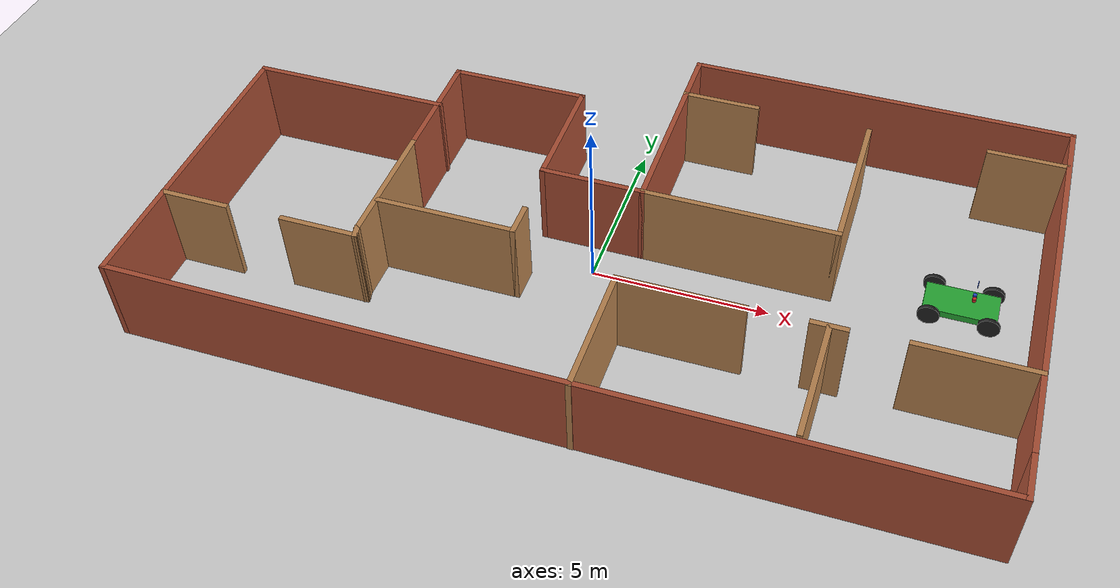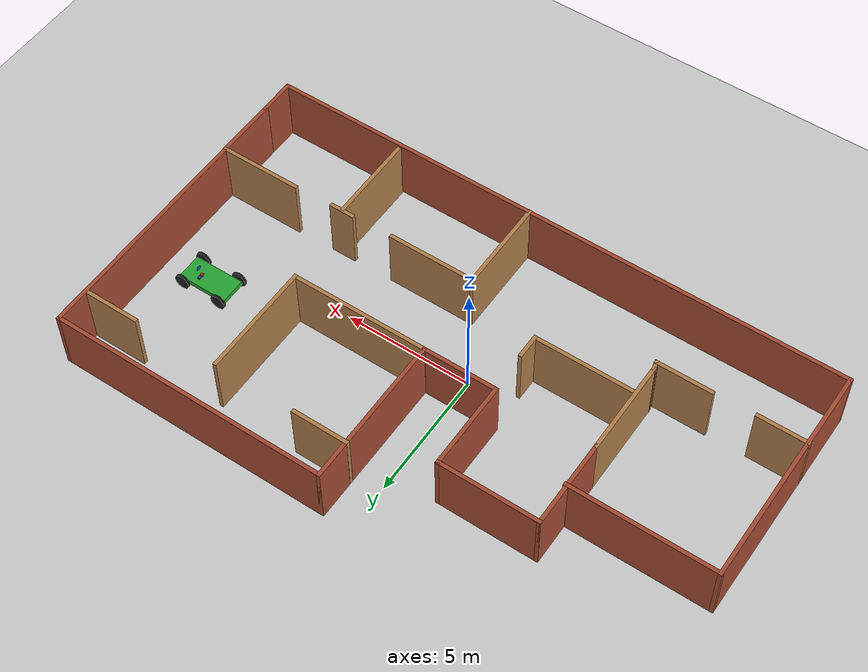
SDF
<sdf version="1.6">
 <world name="default">
  <light name="sun" type="directional">
   <pose>0 0 10 0 -0 0</pose>
   <diffuse>0.8 0.8 0.8 1</diffuse>
   <specular>0.1 0.1 0.1 1</specular>
   <attenuation>
    <range>1000</range>
    <constant>0.9</constant>
    <linear>0.01</linear>
    <quadratic>0.001</quadratic>
   </attenuation>
   <direction>-0.5 0.5 -1</direction>
  </light>
  <model name="ground_plane">
   <static>1</static>
   <link name="link">
    <collision name="collision">
     <geometry><plane><normal>0 0 1</normal><size>100 100</size></plane></geometry>
     <surface><friction><ode><mu>100</mu><mu2>50</mu2></ode></friction></surface>
    </collision>
    <visual name="visual">
     <cast_shadows>0</cast_shadows>
     <geometry><plane><normal>0 0 1</normal><size>100 100</size></plane></geometry>
     <material>
      <script><uri>file://media/materials/scripts/gazebo.material</uri><name>Gazebo/Grey</name></script>
     </material>
    </visual>
   </link>
  </model>
  <gravity>0 0 -9.8</gravity>
  <magnetic_field>6e-06 2.3e-05 -4.2e-05</magnetic_field>
  <atmosphere type="adiabatic"/>
  <physics name="default_physics" default="0" type="ode">
   <max_step_size>0.001</max_step_size>
   <real_time_factor>1</real_time_factor>
   <real_time_update_rate>1000</real_time_update_rate>
  </physics>
  <scene><ambient>0.4 0.4 0.4 1</ambient><background>0.7 0.7 0.7 1</background><shadows>1</shadows></scene>
  <spherical_coordinates>
   <surface_model>EARTH_WGS84</surface_model>
   <latitude_deg>0</latitude_deg>
   <longitude_deg>0</longitude_deg>
   <elevation>0</elevation>
   <heading_deg>0</heading_deg>
  </spherical_coordinates>
  <model name="repo16">
   <pose>0.37862 0.526023 0 0 -0 0</pose>
   <link name="Wall_0">
    <collision name="Wall_0_Collision">
     <geometry><box><size>3.75 0.15 2.5</size></box></geometry>
     <pose>0 0 1.25 0 -0 0</pose>
    </collision>
    <visual name="Wall_0_Visual">
     <pose>0 0 1.25 0 -0 0</pose>
     <geometry><box><size>3.75 0.15 2.5</size></box></geometry>
     <material>
      <script><uri>file://media/materials/scripts/gazebo.material</uri><name>Gazebo/Wood</name></script>
      <ambient>1 1 1 1</ambient>
     </material>
    </visual>
    <pose>-5.99702 -1.29131 0 0 -0 1.5708</pose>
   </link>
   <link name="Wall_1">
    <collision name="Wall_1_Collision">
     <geometry><box><size>3.5 0.15 2.5</size></box></geometry>
     <pose>0 0 1.25 0 -0 0</pose>
    </collision>
    <visual name="Wall_1_Visual">
     <pose>0 0 1.25 0 -0 0</pose>
     <geometry><box><size>3.5 0.15 2.5</size></box></geometry>
     <material>
      <script><uri>file://media/materials/scripts/gazebo.material</uri><name>Gazebo/Bricks</name></script>
      <ambient>1 1 1 1</ambient>
     </material>
    </visual>
    <pose>-5.99702 2.18369 0 0 -0 1.5708</pose>
   </link>
   <link name="Wall_10">
    <collision name="Wall_10_Collision">
     <geometry><box><size>8.75 0.15 2.5</size></box></geometry>
     <pose>0 0 1.25 0 -0 0</pose>
    </collision>
    <visual name="Wall_10_Visual">
     <pose>0 0 1.25 0 -0 0</pose>
     <geometry><box><size>8.75 0.15 2.5</size></box></geometry>
     <material>
      <script><uri>file://media/materials/scripts/gazebo.material</uri><name>Gazebo/Bricks</name></script>
      <ambient>1 1 1 1</ambient>
     </material>
    </visual>
    <pose>-11.547 -2.04131 0 0 -0 1.5708</pose>
   </link>
   <link name="Wall_11">
    <collision name="Wall_11_Collision">
     <geometry><box><size>5.75 0.15 2.5</size></box></geometry>
     <pose>0 0 1.25 0 -0 0</pose>
    </collision>
    <visual name="Wall_11_Visual">
     <pose>0 0 1.25 0 -0 0</pose>
     <geometry><box><size>5.75 0.15 2.5</size></box></geometry>
     <material>
      <script><uri>file://media/materials/scripts/gazebo.material</uri><name>Gazebo/Bricks</name></script>
      <ambient>1 1 1 1</ambient>
     </material>
    </visual>
    <pose>-8.74702 2.25869 0 0 -0 0</pose>
   </link>
   <link name="Wall_13">
    <collision name="Wall_13_Collision">
     <geometry><box><size>2 0.15 2.5</size></box></geometry>
     <pose>0 0 1.25 0 -0 0</pose>
    </collision>
    <visual name="Wall_13_Visual">
     <pose>0 0 1.25 0 -0 0</pose>
     <geometry><box><size>2 0.15 2.5</size></box></geometry>
     <material>
      <script><uri>file://media/materials/scripts/gazebo.material</uri><name>Gazebo/Wood</name></script>
      <ambient>1 1 1 1</ambient>
     </material>
    </visual>
    <pose>-10.628 -3.41098 0 0 -0 0</pose>
   </link>
   <link name="Wall_15">
    <collision name="Wall_15_Collision">
     <geometry><box><size>2.25 0.15 2.5</size></box></geometry>
     <pose>0 0 1.25 0 -0 0</pose>
    </collision>
    <visual name="Wall_15_Visual">
     <pose>0 0 1.25 0 -0 0</pose>
     <geometry><box><size>2.25 0.15 2.5</size></box></geometry>
     <material>
      <script><uri>file://media/materials/scripts/gazebo.material</uri><name>Gazebo/Wood</name></script>
      <ambient>1 1 1 1</ambient>
     </material>
    </visual>
    <pose>-6.98713 -3.36472 0 0 -0 0</pose>
   </link>
   <link name="Wall_16">
    <collision name="Wall_16_Collision">
     <geometry><box><size>0.429893 0.15 2.5</size></box></geometry>
     <pose>0 0 1.25 0 -0 0</pose>
    </collision>
    <visual name="Wall_16_Visual">
     <pose>0 0 1.25 0 -0 0</pose>
     <geometry><box><size>0.429893 0.15 2.5</size></box></geometry>
     <material>
      <script><uri>file://media/materials/scripts/gazebo.material</uri><name>Gazebo/Wood</name></script>
      <ambient>1 1 1 1</ambient>
     </material>
    </visual>
    <pose>-5.96707 -3.22801 0 0 -0 1.78643</pose>
   </link>
   <link name="Wall_18">
    <collision name="Wall_18_Collision">
     <geometry><box><size>4 0.15 2.5</size></box></geometry>
     <pose>0 0 1.25 0 -0 0</pose>
    </collision>
    <visual name="Wall_18_Visual">
     <pose>0 0 1.25 0 -0 0</pose>
     <geometry><box><size>4 0.15 2.5</size></box></geometry>
     <material>
      <script><uri>file://media/materials/scripts/gazebo.material</uri><name>Gazebo/Wood</name></script>
      <ambient>1 1 1 1</ambient>
     </material>
    </visual>
    <pose>-4.00656 -1.94846 0 0 -0 0</pose>
   </link>
   <link name="Wall_19">
    <collision name="Wall_19_Collision">
     <geometry><box><size>1 0.15 2.5</size></box></geometry>
     <pose>0 0 1.25 0 -0 0</pose>
    </collision>
    <visual name="Wall_19_Visual">
     <pose>0 0 1.25 0 -0 0</pose>
     <geometry><box><size>1 0.15 2.5</size></box></geometry>
     <material>
      <script><uri>file://media/materials/scripts/gazebo.material</uri><name>Gazebo/Wood</name></script>
      <ambient>1 1 1 1</ambient>
     </material>
    </visual>
    <pose>-2.08156 -1.52346 0 0 -0 1.5708</pose>
   </link>
   <link name="Wall_2">
    <collision name="Wall_2_Collision">
     <geometry><box><size>4 0.15 2.5</size></box></geometry>
     <pose>0 0 1.25 0 -0 0</pose>
    </collision>
    <visual name="Wall_2_Visual">
     <pose>0 0 1.25 0 -0 0</pose>
     <geometry><box><size>4 0.15 2.5</size></box></geometry>
     <material>
      <script><uri>file://media/materials/scripts/gazebo.material</uri><name>Gazebo/Bricks</name></script>
      <ambient>1 1 1 1</ambient>
     </material>
    </visual>
    <pose>-4.07202 3.85869 0 0 -0 0</pose>
   </link>
   <link name="Wall_21">
    <collision name="Wall_21_Collision">
     <geometry><box><size>3.75 0.15 2.5</size></box></geometry>
     <pose>0 0 1.25 0 -0 0</pose>
    </collision>
    <visual name="Wall_21_Visual">
     <pose>0 0 1.25 0 -0 0</pose>
     <geometry><box><size>3.75 0.15 2.5</size></box></geometry>
     <material>
      <script><uri>file://media/materials/scripts/gazebo.material</uri><name>Gazebo/Wood</name></script>
      <ambient>1 1 1 1</ambient>
     </material>
    </visual>
    <pose>0.976786 -4.55869 0 0 -0 1.5708</pose>
   </link>
   <link name="Wall_22">
    <collision name="Wall_22_Collision">
     <geometry><box><size>3.5 0.15 2.5</size></box></geometry>
     <pose>0 0 1.25 0 -0 0</pose>
    </collision>
    <visual name="Wall_22_Visual">
     <pose>0 0 1.25 0 -0 0</pose>
     <geometry><box><size>3.5 0.15 2.5</size></box></geometry>
     <material>
      <script><uri>file://media/materials/scripts/gazebo.material</uri><name>Gazebo/Wood</name></script>
      <ambient>1 1 1 1</ambient>
     </material>
    </visual>
    <pose>2.65179 -2.75869 0 0 -0 0</pose>
   </link>
   <link name="Wall_24">
    <collision name="Wall_24_Collision">
     <geometry><box><size>1 0.15 2.5</size></box></geometry>
     <pose>0 0 1.25 0 -0 0</pose>
    </collision>
    <visual name="Wall_24_Visual">
     <pose>0 0 1.25 0 -0 0</pose>
     <geometry><box><size>1 0.15 2.5</size></box></geometry>
     <material>
      <script><uri>file://media/materials/scripts/gazebo.material</uri><name>Gazebo/Wood</name></script>
      <ambient>1 1 1 1</ambient>
     </material>
    </visual>
    <pose>6.42884 -2.71948 0 0 -0 0</pose>
   </link>
   <link name="Wall_26">
    <collision name="Wall_26_Collision">
     <geometry><box><size>3.5 0.15 2.5</size></box></geometry>
     <pose>0 0 1.25 0 -0 0</pose>
    </collision>
    <visual name="Wall_26_Visual">
     <pose>0 0 1.25 0 -0 0</pose>
     <geometry><box><size>3.5 0.15 2.5</size></box></geometry>
     <material>
      <script><uri>file://media/materials/scripts/gazebo.material</uri><name>Gazebo/Wood</name></script>
      <ambient>1 1 1 1</ambient>
     </material>
    </visual>
    <pose>6.43561 -4.45616 0 0 0 -1.5708</pose>
   </link>
   <link name="Wall_28">
    <collision name="Wall_28_Collision">
     <geometry><box><size>3.25 0.15 2.5</size></box></geometry>
     <pose>0 0 1.25 0 -0 0</pose>
    </collision>
    <visual name="Wall_28_Visual">
     <pose>0 0 1.25 0 -0 0</pose>
     <geometry><box><size>3.25 0.15 2.5</size></box></geometry>
     <material>
      <script><uri>file://media/materials/scripts/gazebo.material</uri><name>Gazebo/Wood</name></script>
      <ambient>1 1 1 1</ambient>
     </material>
    </visual>
    <pose>9.99026 -2.6578 0 0 -0 0</pose>
   </link>
   <link name="Wall_3">
    <collision name="Wall_3_Collision">
     <geometry><box><size>3.5 0.15 2.5</size></box></geometry>
     <pose>0 0 1.25 0 -0 0</pose>
    </collision>
    <visual name="Wall_3_Visual">
     <pose>0 0 1.25 0 -0 0</pose>
     <geometry><box><size>3.5 0.15 2.5</size></box></geometry>
     <material>
      <script><uri>file://media/materials/scripts/gazebo.material</uri><name>Gazebo/Bricks</name></script>
      <ambient>1 1 1 1</ambient>
     </material>
    </visual>
    <pose>-2.14702 2.18369 0 0 0 -1.5708</pose>
   </link>
   <link name="Wall_30">
    <collision name="Wall_30_Collision">
     <geometry><box><size>2.25 0.15 2.5</size></box></geometry>
     <pose>0 0 1.25 0 -0 0</pose>
    </collision>
    <visual name="Wall_30_Visual">
     <pose>0 0 1.25 0 -0 0</pose>
     <geometry><box><size>2.25 0.15 2.5</size></box></geometry>
     <material>
      <script><uri>file://media/materials/scripts/gazebo.material</uri><name>Gazebo/Wood</name></script>
      <ambient>1 1 1 1</ambient>
     </material>
    </visual>
    <pose>1.74922 4.8982 0 0 -0 0</pose>
   </link>
   <link name="Wall_32">
    <collision name="Wall_32_Collision">
     <geometry><box><size>2.25 0.15 2.5</size></box></geometry>
     <pose>0 0 1.25 0 -0 0</pose>
    </collision>
    <visual name="Wall_32_Visual">
     <pose>0 0 1.25 0 -0 0</pose>
     <geometry><box><size>2.25 0.15 2.5</size></box></geometry>
     <material>
      <script><uri>file://media/materials/scripts/gazebo.material</uri><name>Gazebo/Wood</name></script>
      <ambient>1 1 1 1</ambient>
     </material>
    </visual>
    <pose>10.4435 4.99073 0 0 -0 3.14159</pose>
   </link>
   <link name="Wall_35">
    <collision name="Wall_35_Collision">
     <geometry><box><size>5.5 0.15 2.5</size></box></geometry>
     <pose>0 0 1.25 0 -0 0</pose>
    </collision>
    <visual name="Wall_35_Visual">
     <pose>0 0 1.25 0 -0 0</pose>
     <geometry><box><size>5.5 0.15 2.5</size></box></geometry>
     <material>
      <script><uri>file://media/materials/scripts/gazebo.material</uri><name>Gazebo/Wood</name></script>
      <ambient>1 1 1 1</ambient>
     </material>
    </visual>
    <pose>3.37798 0.508692 0 0 -0 0</pose>
   </link>
   <link name="Wall_36">
    <collision name="Wall_36_Collision">
     <geometry><box><size>4.5 0.15 2.5</size></box></geometry>
     <pose>0 0 1.25 0 -0 0</pose>
    </collision>
    <visual name="Wall_36_Visual">
     <pose>0 0 1.25 0 -0 0</pose>
     <geometry><box><size>4.5 0.15 2.5</size></box></geometry>
     <material>
      <script><uri>file://media/materials/scripts/gazebo.material</uri><name>Gazebo/Wood</name></script>
      <ambient>1 1 1 1</ambient>
     </material>
    </visual>
    <pose>6.05298 2.68369 0 0 -0 1.5708</pose>
   </link>
   <link name="Wall_4">
    <collision name="Wall_4_Collision">
     <geometry><box><size>3 0.15 2.5</size></box></geometry>
     <pose>0 0 1.25 0 -0 0</pose>
    </collision>
    <visual name="Wall_4_Visual">
     <pose>0 0 1.25 0 -0 0</pose>
     <geometry><box><size>3 0.15 2.5</size></box></geometry>
     <material>
      <script><uri>file://media/materials/scripts/gazebo.material</uri><name>Gazebo/Bricks</name></script>
      <ambient>1 1 1 1</ambient>
     </material>
    </visual>
    <pose>-0.722018 0.508692 0 0 -0 0</pose>
   </link>
   <link name="Wall_5">
    <collision name="Wall_5_Collision">
     <geometry><box><size>6 0.15 2.5</size></box></geometry>
     <pose>0 0 1.25 0 -0 0</pose>
    </collision>
    <visual name="Wall_5_Visual">
     <pose>0 0 1.25 0 -0 0</pose>
     <geometry><box><size>6 0.15 2.5</size></box></geometry>
     <material>
      <script><uri>file://media/materials/scripts/gazebo.material</uri><name>Gazebo/Bricks</name></script>
      <ambient>1 1 1 1</ambient>
     </material>
    </visual>
    <pose>0.702982 3.43369 0 0 -0 1.5708</pose>
   </link>
   <link name="Wall_6">
    <collision name="Wall_6_Collision">
     <geometry><box><size>11 0.15 2.5</size></box></geometry>
     <pose>0 0 1.25 0 -0 0</pose>
    </collision>
    <visual name="Wall_6_Visual">
     <pose>0 0 1.25 0 -0 0</pose>
     <geometry><box><size>11 0.15 2.5</size></box></geometry>
     <material>
      <script><uri>file://media/materials/scripts/gazebo.material</uri><name>Gazebo/Bricks</name></script>
      <ambient>1 1 1 1</ambient>
     </material>
    </visual>
    <pose>6.12798 6.35869 0 0 -0 0</pose>
   </link>
   <link name="Wall_7">
    <collision name="Wall_7_Collision">
     <geometry><box><size>11.5 0.15 2.5</size></box></geometry>
     <pose>0 0 1.25 0 -0 0</pose>
    </collision>
    <visual name="Wall_7_Visual">
     <pose>0 0 1.25 0 -0 0</pose>
     <geometry><box><size>11.5 0.15 2.5</size></box></geometry>
     <material>
      <script><uri>file://media/materials/scripts/gazebo.material</uri><name>Gazebo/Bricks</name></script>
      <ambient>1 1 1 1</ambient>
     </material>
    </visual>
    <pose>11.553 0.683692 0 0 0 -1.5708</pose>
   </link>
   <link name="Wall_8">
    <collision name="Wall_8_Collision">
     <geometry><box><size>1.5 0.15 2.5</size></box></geometry>
     <pose>0 0 1.25 0 -0 0</pose>
    </collision>
    <visual name="Wall_8_Visual">
     <pose>0 0 1.25 0 -0 0</pose>
     <geometry><box><size>1.5 0.15 2.5</size></box></geometry>
     <material>
      <script><uri>file://media/materials/scripts/gazebo.material</uri><name>Gazebo/Bricks</name></script>
      <ambient>1 1 1 1</ambient>
     </material>
    </visual>
    <pose>11.553 -5.66631 0 0 0 -1.5708</pose>
   </link>
   <link name="Wall_9">
    <collision name="Wall_9_Collision">
     <geometry><box><size>23.25 0.15 2.5</size></box></geometry>
     <pose>0 0 1.25 0 -0 0</pose>
    </collision>
    <visual name="Wall_9_Visual">
     <pose>0 0 1.25 0 -0 0</pose>
     <geometry><box><size>23.25 0.15 2.5</size></box></geometry>
     <material>
      <script><uri>file://media/materials/scripts/gazebo.material</uri><name>Gazebo/Bricks</name></script>
      <ambient>1 1 1 1</ambient>
     </material>
    </visual>
    <pose>0.002982 -6.34131 0 0 -0 3.14159</pose>
   </link>
   <static>1</static>
  </model>
  <model name="car">
   <link name="chassis">
    <pose>0 0 0.3 0 -0 0</pose>
    <collision name="collision"><geometry><box><size>2 1 0.2</size></box></geometry></collision>
    <visual name="visual">
     <geometry><box><size>2 1 0.2</size></box></geometry>
     <material>
      <script><uri>file://media/materials/scripts/gazebo.material</uri><name>Gazebo/Green</name></script>
     </material>
    </visual>
    <inertial>
     <inertia><ixx>1</ixx><ixy>0</ixy><ixz>0</ixz><iyy>1</iyy><iyz>0</iyz><izz>1</izz></inertia>
     <mass>1</mass>
    </inertial>
   </link>
   <link name="front_left_wheel">
    <pose>0.8 0.6 0.3 -0 1.5707 1.5707</pose>
    <collision name="collision">
     <geometry><cylinder><radius>0.3</radius><length>0.1</length></cylinder></geometry>
    </collision>
    <visual name="visual">
     <geometry><cylinder><radius>0.3</radius><length>0.1</length></cylinder></geometry>
     <material>
      <script><uri>file://media/materials/scripts/gazebo.material</uri><name>Gazebo/Black</name></script>
     </material>
    </visual>
    <inertial>
     <inertia><ixx>1</ixx><ixy>0</ixy><ixz>0</ixz><iyy>1</iyy><iyz>0</iyz><izz>1</izz></inertia>
     <mass>1</mass>
    </inertial>
   </link>
   <link name="front_right_wheel">
    <pose>0.8 -0.6 0.3 -0 1.5707 1.5707</pose>
    <collision name="collision">
     <geometry><cylinder><radius>0.3</radius><length>0.1</length></cylinder></geometry>
    </collision>
    <visual name="visual">
     <geometry><cylinder><radius>0.3</radius><length>0.1</length></cylinder></geometry>
     <material>
      <script><uri>file://media/materials/scripts/gazebo.material</uri><name>Gazebo/Black</name></script>
     </material>
    </visual>
    <inertial>
     <inertia><ixx>1</ixx><ixy>0</ixy><ixz>0</ixz><iyy>1</iyy><iyz>0</iyz><izz>1</izz></inertia>
     <mass>1</mass>
    </inertial>
   </link>
   <link name="back_right_wheel">
    <pose>-0.8 -0.6 0.3 -0 1.5707 1.5707</pose>
    <collision name="collision">
     <geometry><cylinder><radius>0.3</radius><length>0.1</length></cylinder></geometry>
    </collision>
    <visual name="visual">
     <geometry><cylinder><radius>0.3</radius><length>0.1</length></cylinder></geometry>
     <material>
      <script><uri>file://media/materials/scripts/gazebo.material</uri><name>Gazebo/Black</name></script>
     </material>
    </visual>
    <inertial>
     <inertia><ixx>1</ixx><ixy>0</ixy><ixz>0</ixz><iyy>1</iyy><iyz>0</iyz><izz>1</izz></inertia>
     <mass>1</mass>
    </inertial>
   </link>
   <link name="back_left_wheel">
    <pose>-0.8 0.6 0.3 -0 1.5707 1.5707</pose>
    <collision name="collision">
     <geometry><cylinder><radius>0.3</radius><length>0.1</length></cylinder></geometry>
    </collision>
    <visual name="visual">
     <geometry><cylinder><radius>0.3</radius><length>0.1</length></cylinder></geometry>
     <material>
      <script><uri>file://media/materials/scripts/gazebo.material</uri><name>Gazebo/Black</name></script>
     </material>
    </visual>
    <inertial>
     <inertia><ixx>1</ixx><ixy>0</ixy><ixz>0</ixz><iyy>1</iyy><iyz>0</iyz><izz>1</izz></inertia>
     <mass>1</mass>
    </inertial>
   </link>
   <link name="gas_pedal">
    <pose>0.3 0.1 0.5 0 -0 0</pose>
    <collision name="collision"><geometry><box><size>0.1 0.1 0.1</size></box></geometry></collision>
    <visual name="visual">
     <geometry><box><size>0.1 0.1 0.1</size></box></geometry>
     <material>
      <script><uri>file://media/materials/scripts/gazebo.material</uri><name>Gazebo/Red</name></script>
     </material>
    </visual>
    <inertial>
     <inertia><ixx>1</ixx><ixy>0</ixy><ixz>0</ixz><iyy>1</iyy><iyz>0</iyz><izz>1</izz></inertia>
     <mass>1</mass>
    </inertial>
   </link>
   <link name="brake_pedal">
    <pose>0.3 0.25 0.5 0 -0 0</pose>
    <collision name="collision"><geometry><box><size>0.1 0.1 0.1</size></box></geometry></collision>
    <visual name="visual">
     <geometry><box><size>0.1 0.1 0.1</size></box></geometry>
     <material>
      <script><uri>file://media/materials/scripts/gazebo.material</uri><name>Gazebo/Blue</name></script>
     </material>
    </visual>
    <inertial>
     <inertia><ixx>1</ixx><ixy>0</ixy><ixz>0</ixz><iyy>1</iyy><iyz>0</iyz><izz>1</izz></inertia>
     <mass>1</mass>
    </inertial>
   </link>
   <link name="steering_wheel">
    <pose>0.3 0.2 1 0 1.5707 0</pose>
    <collision name="collision">
     <geometry><cylinder><radius>0.1</radius><length>0.01</length></cylinder></geometry>
    </collision>
    <visual name="visual">
     <geometry><cylinder><radius>0.1</radius><length>0.01</length></cylinder></geometry>
     <material>
      <script><uri>file://media/materials/scripts/gazebo.material</uri><name>Gazebo/Blue</name></script>
     </material>
    </visual>
    <inertial>
     <inertia><ixx>1</ixx><ixy>0</ixy><ixz>0</ixz><iyy>1</iyy><iyz>0</iyz><izz>1</izz></inertia>
     <mass>1</mass>
    </inertial>
   </link>
   <joint name="gas_joint" type="prismatic">
    <parent>chassis</parent>
    <child>gas_pedal</child>
    <axis>
     <xyz>1 0 0</xyz>
     <limit><lower>0</lower><upper>0.2</upper></limit>
     <use_parent_model_frame>1</use_parent_model_frame>
     <dynamics><spring_reference>0</spring_reference><spring_stiffness>0</spring_stiffness></dynamics>
    </axis>
   </joint>
   <joint name="brake_joint" type="prismatic">
    <parent>chassis</parent>
    <child>brake_pedal</child>
    <axis>
     <xyz>1 0 0</xyz>
     <limit><lower>0</lower><upper>0.2</upper></limit>
     <use_parent_model_frame>1</use_parent_model_frame>
     <dynamics><spring_reference>0</spring_reference><spring_stiffness>0</spring_stiffness></dynamics>
    </axis>
   </joint>
   <joint name="steering_joint" type="revolute">
    <parent>chassis</parent>
    <child>steering_wheel</child>
    <axis>
     <xyz>1 0 0</xyz>
     <limit><lower>-7.853</lower><upper>7.853</upper></limit>
     <use_parent_model_frame>1</use_parent_model_frame>
     <dynamics><spring_reference>0</spring_reference><spring_stiffness>0</spring_stiffness></dynamics>
    </axis>
   </joint>
   <joint name="front_left_joint" type="revolute2">
    <parent>chassis</parent>
    <child>front_left_wheel</child>
    <axis>
     <xyz>0 0 1</xyz>
     <limit><lower>8.69483e-06</lower><upper>8.69483e-06</upper></limit>
     <use_parent_model_frame>1</use_parent_model_frame>
     <dynamics><spring_reference>0</spring_reference><spring_stiffness>0</spring_stiffness></dynamics>
    </axis>
    <axis2>
     <xyz>0 1 0</xyz>
     <use_parent_model_frame>1</use_parent_model_frame>
     <dynamics><spring_reference>0</spring_reference><spring_stiffness>0</spring_stiffness></dynamics>
    </axis2>
    <physics><ode><limit><cfm>0</cfm><erp>0.9</erp></limit></ode></physics>
   </joint>
   <joint name="front_right_joint" type="revolute2">
    <parent>chassis</parent>
    <child>front_right_wheel</child>
    <axis>
     <xyz>0 0 1</xyz>
     <limit><lower>8.69483e-06</lower><upper>8.69483e-06</upper></limit>
     <use_parent_model_frame>1</use_parent_model_frame>
     <dynamics><spring_reference>0</spring_reference><spring_stiffness>0</spring_stiffness></dynamics>
    </axis>
    <axis2>
     <xyz>0 1 0</xyz>
     <use_parent_model_frame>1</use_parent_model_frame>
     <dynamics><spring_reference>0</spring_reference><spring_stiffness>0</spring_stiffness></dynamics>
    </axis2>
    <physics><ode><limit><cfm>0</cfm><erp>0.9</erp></limit></ode></physics>
   </joint>
   <joint name="back_right_joint" type="revolute2">
    <parent>chassis</parent>
    <child>back_right_wheel</child>
    <axis>
     <xyz>0 0 1</xyz>
     <limit><lower>0</lower><upper>0</upper></limit>
     <use_parent_model_frame>1</use_parent_model_frame>
     <dynamics><spring_reference>0</spring_reference><spring_stiffness>0</spring_stiffness></dynamics>
    </axis>
    <axis2>
     <xyz>0 1 0</xyz>
     <use_parent_model_frame>1</use_parent_model_frame>
     <dynamics><spring_reference>0</spring_reference><spring_stiffness>0</spring_stiffness></dynamics>
    </axis2>
    <physics><ode><limit><cfm>0</cfm><erp>0.9</erp></limit></ode></physics>
   </joint>
   <joint name="back_left_joint" type="revolute2">
    <parent>chassis</parent>
    <child>back_left_wheel</child>
    <axis>
     <xyz>0 0 1</xyz>
     <limit><lower>0</lower><upper>0</upper></limit>
     <use_parent_model_frame>1</use_parent_model_frame>
     <dynamics><spring_reference>0</spring_reference><spring_stiffness>0</spring_stiffness></dynamics>
    </axis>
    <axis2>
     <xyz>0 1 0</xyz>
     <use_parent_model_frame>1</use_parent_model_frame>
     <dynamics><spring_reference>0</spring_reference><spring_stiffness>0</spring_stiffness></dynamics>
    </axis2>
    <physics><ode><limit><cfm>0</cfm><erp>0.9</erp></limit></ode></physics>
   </joint>
   <plugin name="vehicle" filename="libVehiclePlugin.so">
    <front_left>front_left_joint</front_left>
    <front_right>front_right_joint</front_right>
    <back_left>back_left_joint</back_left>
    <back_right>back_right_joint</back_right>
    <gas>gas_joint</gas>
    <brake>brake_joint</brake>
    <steering>steering_joint</steering>
    <front_power>10</front_power>
    <rear_power>10</rear_power>
    <tire_angle_range>0.5</tire_angle_range>
    <max_speed>10</max_speed>
    <aero_load>0.1</aero_load>
   </plugin>
   <pose>9.90821 1.62273 -0.002616 -0.000273 0.000907 0.000291</pose>
  </model>
 </world>
</sdf>
